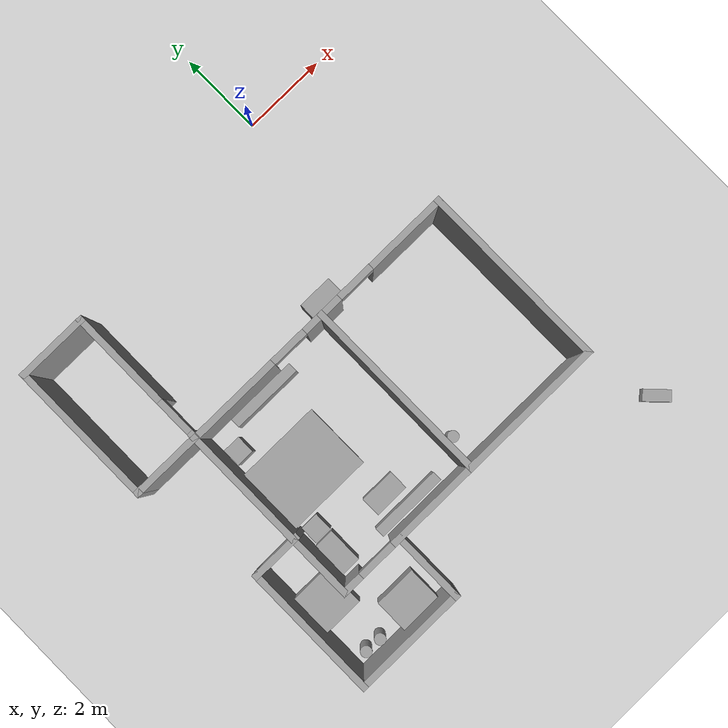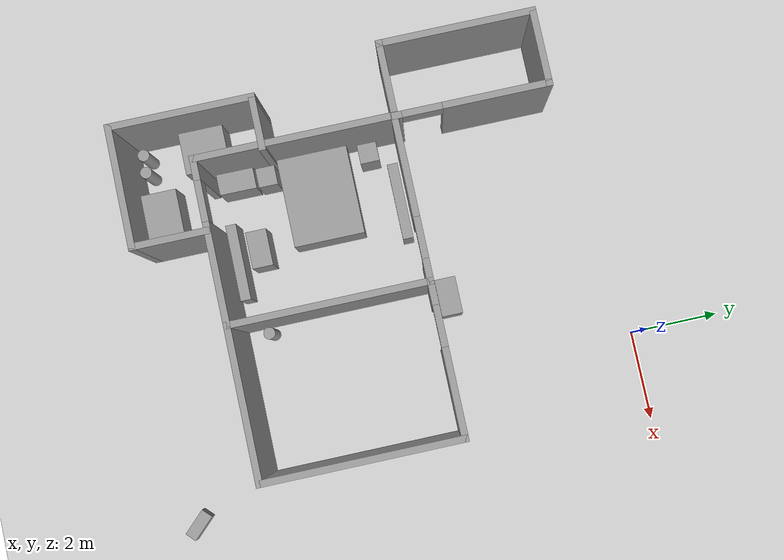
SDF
<sdf version="1.9">
 <world name="default">
  <model name="ground_plane">
   <static>true</static>
   <link name="link">
    <collision name="collision">
     <geometry><plane><normal>0 0 1</normal><size>100 100</size></plane></geometry>
     <surface><friction><ode><mu>100</mu><mu2>50</mu2></ode></friction></surface>
    </collision>
    <visual name="visual">
     <cast_shadows>false</cast_shadows>
     <geometry><plane><normal>0 0 1</normal><size>100 100</size></plane></geometry>
     <material>
      <script><uri>file://media/materials/scripts/gazebo.material</uri><name>Gazebo/Grey</name></script>
     </material>
    </visual>
   </link>
  </model>
  <model name="cma_varanda1">
   <pose>-6.3251799999999996 -2.5931299999999999 0 0 0 0</pose>
   <link name="Wall_0">
    <pose>0.80000000000000004 0 0 0 0 -1.5708</pose>
    <visual name="Wall_0_Visual_0">
     <pose>-0.55249999999999999 0 1.25 0 0 0</pose>
     <geometry><box><size>2.395 0.14999999999999999 2.5</size></box></geometry>
     <material>
      <script><uri>file://media/materials/scripts/gazebo.material</uri><name>Gazebo/Grey</name></script>
      <ambient>1 1 1 1</ambient>
     </material>
    </visual>
    <collision name="Wall_0_Collision_0">
     <geometry><box><size>2.395 0.14999999999999999 2.5</size></box></geometry>
     <pose>-0.55249999999999999 0 1.25 0 0 0</pose>
    </collision>
    <visual name="Wall_0_Visual_1">
     <pose>1.6375 0 1.25 0 0 0</pose>
     <geometry><box><size>0.22500000000000001 0.14999999999999999 2.5</size></box></geometry>
     <material>
      <script><uri>file://media/materials/scripts/gazebo.material</uri><name>Gazebo/Grey</name></script>
      <ambient>1 1 1 1</ambient>
     </material>
    </visual>
    <collision name="Wall_0_Collision_1">
     <geometry><box><size>0.22500000000000001 0.14999999999999999 2.5</size></box></geometry>
     <pose>1.6375 0 1.25 0 0 0</pose>
    </collision>
    <visual name="Wall_0_Visual_2">
     <pose>1.085 0 2.25 0 0 0</pose>
     <geometry><box><size>0.88 0.14999999999999999 0.5</size></box></geometry>
     <material>
      <script><uri>file://media/materials/scripts/gazebo.material</uri><name>Gazebo/Grey</name></script>
      <ambient>1 1 1 1</ambient>
     </material>
    </visual>
    <collision name="Wall_0_Collision_2">
     <geometry><box><size>0.88 0.14999999999999999 0.5</size></box></geometry>
     <pose>1.085 0 2.25 0 0 0</pose>
    </collision>
   </link>
   <link name="Wall_1">
    <collision name="Wall_1_Collision">
     <geometry><box><size>1.75 0.14999999999999999 2.5</size></box></geometry>
     <pose>0 0 1.25 0 0 0</pose>
    </collision>
    <visual name="Wall_1_Visual">
     <pose>0 0 1.25 0 0 0</pose>
     <geometry><box><size>1.75 0.14999999999999999 2.5</size></box></geometry>
     <material>
      <script><uri>file://media/materials/scripts/gazebo.material</uri><name>Gazebo/Grey</name></script>
      <ambient>1 1 1 1</ambient>
     </material>
    </visual>
    <pose>0 -1.675 0 0 0 3.1415899999999999</pose>
   </link>
   <link name="Wall_2">
    <collision name="Wall_2_Collision">
     <geometry><box><size>3.5 0.14999999999999999 2.5</size></box></geometry>
     <pose>0 0 1.25 0 0 0</pose>
    </collision>
    <visual name="Wall_2_Visual">
     <pose>0 0 1.25 0 0 0</pose>
     <geometry><box><size>3.5 0.14999999999999999 2.5</size></box></geometry>
     <material>
      <script><uri>file://media/materials/scripts/gazebo.material</uri><name>Gazebo/Grey</name></script>
      <ambient>1 1 1 1</ambient>
     </material>
    </visual>
    <pose>-0.80000000000000004 0 0 0 0 1.5708</pose>
   </link>
   <link name="Wall_3">
    <collision name="Wall_3_Collision">
     <geometry><box><size>1.75 0.14999999999999999 2.5</size></box></geometry>
     <pose>0 0 1.25 0 0 0</pose>
    </collision>
    <visual name="Wall_3_Visual">
     <pose>0 0 1.25 0 0 0</pose>
     <geometry><box><size>1.75 0.14999999999999999 2.5</size></box></geometry>
     <material>
      <script><uri>file://media/materials/scripts/gazebo.material</uri><name>Gazebo/Grey</name></script>
      <ambient>1 1 1 1</ambient>
     </material>
    </visual>
    <pose>0 1.675 0 0 0 0</pose>
   </link>
   <static>true</static>
  </model>
  <model name="cma_quartos">
   <pose>-2.58169 -7.2645600000000004 0 0 0 0</pose>
   <link name="Wall_0">
    <collision name="Wall_0_Collision">
     <geometry><box><size>4.5 0.14999999999999999 2.5</size></box></geometry>
     <pose>0 0 1.25 0 0 0</pose>
    </collision>
    <visual name="Wall_0_Visual">
     <pose>0 0 1.25 0 0 0</pose>
     <geometry><box><size>4.5 0.14999999999999999 2.5</size></box></geometry>
     <material>
      <script><uri>file://media/materials/scripts/gazebo.material</uri><name>Gazebo/Grey</name></script>
      <ambient>1 1 1 1</ambient>
     </material>
    </visual>
    <pose>0.64500000000000002 0.81000000000000005 0 0 0 -1.5708</pose>
   </link>
   <link name="Wall_1">
    <pose>-1.155 -1.365 0 0 0 3.1415899999999999</pose>
    <visual name="Wall_1_Visual_0">
     <pose>-0.72250000000000003 0 1.25 0 0 0</pose>
     <geometry><box><size>2.3050000000000002 0.14999999999999999 2.5</size></box></geometry>
     <material>
      <script><uri>file://media/materials/scripts/gazebo.material</uri><name>Gazebo/Grey</name></script>
      <ambient>1 1 1 1</ambient>
     </material>
    </visual>
    <collision name="Wall_1_Collision_0">
     <geometry><box><size>2.3050000000000002 0.14999999999999999 2.5</size></box></geometry>
     <pose>-0.72250000000000003 0 1.25 0 0 0</pose>
    </collision>
    <visual name="Wall_1_Visual_1">
     <pose>1.6025 0 1.25 0 0 0</pose>
     <geometry><box><size>0.54500000000000004 0.14999999999999999 2.5</size></box></geometry>
     <material>
      <script><uri>file://media/materials/scripts/gazebo.material</uri><name>Gazebo/Grey</name></script>
      <ambient>1 1 1 1</ambient>
     </material>
    </visual>
    <collision name="Wall_1_Collision_1">
     <geometry><box><size>0.54500000000000004 0.14999999999999999 2.5</size></box></geometry>
     <pose>1.6025 0 1.25 0 0 0</pose>
    </collision>
    <visual name="Wall_1_Visual_2">
     <pose>0.88 0 2.25 0 0 0</pose>
     <geometry><box><size>0.90000000000000002 0.14999999999999999 0.5</size></box></geometry>
     <material>
      <script><uri>file://media/materials/scripts/gazebo.material</uri><name>Gazebo/Grey</name></script>
      <ambient>1 1 1 1</ambient>
     </material>
    </visual>
    <collision name="Wall_1_Collision_2">
     <geometry><box><size>0.90000000000000002 0.14999999999999999 0.5</size></box></geometry>
     <pose>0.88 0 2.25 0 0 0</pose>
    </collision>
   </link>
   <link name="Wall_10">
    <collision name="Wall_10_Collision">
     <geometry><box><size>1.75 0.14999999999999999 2.5</size></box></geometry>
     <pose>0 0 1.25 0 0 0</pose>
    </collision>
    <visual name="Wall_10_Visual">
     <pose>0 0 1.25 0 0 0</pose>
     <geometry><box><size>1.75 0.14999999999999999 2.5</size></box></geometry>
     <material>
      <script><uri>file://media/materials/scripts/gazebo.material</uri><name>Gazebo/Grey</name></script>
      <ambient>1 1 1 1</ambient>
     </material>
    </visual>
    <pose>-1.395 -2.1850000000000001 0 0 0 -1.5708</pose>
   </link>
   <link name="Wall_11">
    <collision name="Wall_11_Collision">
     <geometry><box><size>2.75 0.14999999999999999 2.5</size></box></geometry>
     <pose>0 0 1.25 0 0 0</pose>
    </collision>
    <visual name="Wall_11_Visual">
     <pose>0 0 1.25 0 0 0</pose>
     <geometry><box><size>2.75 0.14999999999999999 2.5</size></box></geometry>
     <material>
      <script><uri>file://media/materials/scripts/gazebo.material</uri><name>Gazebo/Grey</name></script>
      <ambient>1 1 1 1</ambient>
     </material>
    </visual>
    <pose>-2.6949999999999998 -2.9849999999999999 0 0 0 3.1415899999999999</pose>
   </link>
   <link name="Wall_12">
    <collision name="Wall_12_Collision">
     <geometry><box><size>3.25 0.14999999999999999 2.5</size></box></geometry>
     <pose>0 0 1.25 0 0 0</pose>
    </collision>
    <visual name="Wall_12_Visual">
     <pose>0 0 1.25 0 0 0</pose>
     <geometry><box><size>3.25 0.14999999999999999 2.5</size></box></geometry>
     <material>
      <script><uri>file://media/materials/scripts/gazebo.material</uri><name>Gazebo/Grey</name></script>
      <ambient>1 1 1 1</ambient>
     </material>
    </visual>
    <pose>-3.9950000000000001 -1.4350000000000001 0 0 0 1.5708</pose>
   </link>
   <link name="Wall_13">
    <collision name="Wall_13_Collision">
     <geometry><box><size>1.25 0.14999999999999999 2.5</size></box></geometry>
     <pose>0 0 1.25 0 0 0</pose>
    </collision>
    <visual name="Wall_13_Visual">
     <pose>0 0 1.25 0 0 0</pose>
     <geometry><box><size>1.25 0.14999999999999999 2.5</size></box></geometry>
     <material>
      <script><uri>file://media/materials/scripts/gazebo.material</uri><name>Gazebo/Grey</name></script>
      <ambient>1 1 1 1</ambient>
     </material>
    </visual>
    <pose>-3.4449999999999998 0.115 0 0 0 0</pose>
   </link>
   <link name="Wall_2">
    <collision name="Wall_2_Collision">
     <geometry><box><size>4.5 0.14999999999999999 2.5</size></box></geometry>
     <pose>0 0 1.25 0 0 0</pose>
    </collision>
    <visual name="Wall_2_Visual">
     <pose>0 0 1.25 0 0 0</pose>
     <geometry><box><size>4.5 0.14999999999999999 2.5</size></box></geometry>
     <material>
      <script><uri>file://media/materials/scripts/gazebo.material</uri><name>Gazebo/Grey</name></script>
      <ambient>1 1 1 1</ambient>
     </material>
    </visual>
    <pose>-2.9550000000000001 0.81000000000000005 0 0 0 1.5708</pose>
   </link>
   <link name="Wall_3">
    <pose>-1.155 2.9849999999999999 0 0 0 0</pose>
    <visual name="Wall_3_Visual_0">
     <pose>-0.73250000000000004 0 1.25 0 0 0</pose>
     <geometry><box><size>2.2850000000000001 0.14999999999999999 2.5</size></box></geometry>
     <material>
      <script><uri>file://media/materials/scripts/gazebo.material</uri><name>Gazebo/Grey</name></script>
      <ambient>1 1 1 1</ambient>
     </material>
    </visual>
    <collision name="Wall_3_Collision_0">
     <geometry><box><size>2.2850000000000001 0.14999999999999999 2.5</size></box></geometry>
     <pose>-0.73250000000000004 0 1.25 0 0 0</pose>
    </collision>
    <visual name="Wall_3_Visual_1">
     <pose>1.5925 0 1.25 0 0 0</pose>
     <geometry><box><size>0.56499999999999995 0.14999999999999999 2.5</size></box></geometry>
     <material>
      <script><uri>file://media/materials/scripts/gazebo.material</uri><name>Gazebo/Grey</name></script>
      <ambient>1 1 1 1</ambient>
     </material>
    </visual>
    <collision name="Wall_3_Collision_1">
     <geometry><box><size>0.56499999999999995 0.14999999999999999 2.5</size></box></geometry>
     <pose>1.5925 0 1.25 0 0 0</pose>
    </collision>
    <visual name="Wall_3_Visual_2">
     <pose>0.85999999999999999 0 2.25 0 0 0</pose>
     <geometry><box><size>0.90000000000000002 0.14999999999999999 0.5</size></box></geometry>
     <material>
      <script><uri>file://media/materials/scripts/gazebo.material</uri><name>Gazebo/Grey</name></script>
      <ambient>1 1 1 1</ambient>
     </material>
    </visual>
    <collision name="Wall_3_Collision_2">
     <geometry><box><size>0.90000000000000002 0.14999999999999999 0.5</size></box></geometry>
     <pose>0.85999999999999999 0 2.25 0 0 0</pose>
    </collision>
   </link>
   <link name="Wall_6">
    <pose>2.3199999999999998 2.9849999999999999 0 0 0 0</pose>
    <visual name="Wall_6_Visual_0">
     <pose>-1.4575 0 1.25 0 0 0</pose>
     <geometry><box><size>0.58499999999999996 0.14999999999999999 2.5</size></box></geometry>
     <material>
      <script><uri>file://media/materials/scripts/gazebo.material</uri><name>Gazebo/Grey</name></script>
      <ambient>1 1 1 1</ambient>
     </material>
    </visual>
    <collision name="Wall_6_Collision_0">
     <geometry><box><size>0.58499999999999996 0.14999999999999999 2.5</size></box></geometry>
     <pose>-1.4575 0 1.25 0 0 0</pose>
    </collision>
    <visual name="Wall_6_Visual_1">
     <pose>0.74250000000000005 0 1.25 0 0 0</pose>
     <geometry><box><size>2.0150000000000001 0.14999999999999999 2.5</size></box></geometry>
     <material>
      <script><uri>file://media/materials/scripts/gazebo.material</uri><name>Gazebo/Grey</name></script>
      <ambient>1 1 1 1</ambient>
     </material>
    </visual>
    <collision name="Wall_6_Collision_1">
     <geometry><box><size>2.0150000000000001 0.14999999999999999 2.5</size></box></geometry>
     <pose>0.74250000000000005 0 1.25 0 0 0</pose>
    </collision>
    <visual name="Wall_6_Visual_2">
     <pose>-0.71499999999999997 0 2.25 0 0 0</pose>
     <geometry><box><size>0.90000000000000002 0.14999999999999999 0.5</size></box></geometry>
     <material>
      <script><uri>file://media/materials/scripts/gazebo.material</uri><name>Gazebo/Grey</name></script>
      <ambient>1 1 1 1</ambient>
     </material>
    </visual>
    <collision name="Wall_6_Collision_2">
     <geometry><box><size>0.90000000000000002 0.14999999999999999 0.5</size></box></geometry>
     <pose>-0.71499999999999997 0 2.25 0 0 0</pose>
    </collision>
   </link>
   <link name="Wall_7">
    <collision name="Wall_7_Collision">
     <geometry><box><size>4.5 0.14999999999999999 2.5</size></box></geometry>
     <pose>0 0 1.25 0 0 0</pose>
    </collision>
    <visual name="Wall_7_Visual">
     <pose>0 0 1.25 0 0 0</pose>
     <geometry><box><size>4.5 0.14999999999999999 2.5</size></box></geometry>
     <material>
      <script><uri>file://media/materials/scripts/gazebo.material</uri><name>Gazebo/Grey</name></script>
      <ambient>1 1 1 1</ambient>
     </material>
    </visual>
    <pose>3.9950000000000001 0.81000000000000005 0 0 0 -1.5708</pose>
   </link>
   <link name="Wall_8">
    <collision name="Wall_8_Collision">
     <geometry><box><size>3.5 0.14999999999999999 2.5</size></box></geometry>
     <pose>0 0 1.25 0 0 0</pose>
    </collision>
    <visual name="Wall_8_Visual">
     <pose>0 0 1.25 0 0 0</pose>
     <geometry><box><size>3.5 0.14999999999999999 2.5</size></box></geometry>
     <material>
      <script><uri>file://media/materials/scripts/gazebo.material</uri><name>Gazebo/Grey</name></script>
      <ambient>1 1 1 1</ambient>
     </material>
    </visual>
    <pose>2.3199999999999998 -1.365 0 0 0 3.1415899999999999</pose>
   </link>
   <static>true</static>
  </model>
  <model name="cma_armario_s">
   <link name="link_1">
    <pose>-1.9999999999999999e-06 -3.0000000000000001e-06 0 0 0 0</pose>
    <inertial>
     <mass>0.39015899999999998</mass>
     <inertia>
      <ixx>0.039647000000000002</ixx>
      <ixy>0</ixy>
      <ixz>0</ixz>
      <iyy>0.055070800000000003</iyy>
      <iyz>0</iyz>
      <izz>0.029691200000000001</izz>
     </inertia>
    </inertial>
    <visual name="visual">
     <geometry><box><size>0.83294199999999996 0.46839700000000001 1</size></box></geometry>
     <material>
      <lighting>true</lighting>
      <script><uri>file://media/materials/scripts/gazebo.material</uri><name>Gazebo/Grey</name></script>
      <ambient>0.300000012 0.300000012 0.300000012 1</ambient>
      <diffuse>0.699999988 0.699999988 0.699999988 1</diffuse>
      <specular>0.00999999978 0.00999999978 0.00999999978 1</specular>
      <emissive>0 0 0 1</emissive>
     </material>
    </visual>
    <collision name="collision">
     <geometry><box><size>0.83294199999999996 0.46839700000000001 1</size></box></geometry>
     <surface>
      <friction>
       <ode><mu>1</mu><mu2>1</mu2><fdir1>0 0 0</fdir1><slip1>0</slip1><slip2>0</slip2></ode>
       <torsional>
        <coefficient>1</coefficient>
        <patch_radius>0</patch_radius>
        <surface_radius>0</surface_radius>
        <use_patch_radius>true</use_patch_radius>
        <ode><slip>0</slip></ode>
       </torsional>
      </friction>
      <bounce><restitution_coefficient>0</restitution_coefficient><threshold>1000000</threshold></bounce>
      <contact>
       <collide_without_contact>false</collide_without_contact>
       <collide_without_contact_bitmask>1</collide_without_contact_bitmask>
       <collide_bitmask>1</collide_bitmask>
       <ode>
        <soft_cfm>0</soft_cfm>
        <soft_erp>0.20000000000000001</soft_erp>
        <kp>10000000000000</kp>
        <kd>1</kd>
        <max_vel>0.01</max_vel>
        <min_depth>0</min_depth>
       </ode>
       <bullet>
        <split_impulse>true</split_impulse>
        <split_impulse_penetration_threshold>-0.01</split_impulse_penetration_threshold>
        <soft_cfm>0</soft_cfm>
        <soft_erp>0.20000000000000001</soft_erp>
        <kp>10000000000000</kp>
        <kd>1</kd>
       </bullet>
      </contact>
     </surface>
    </collision>
   </link>
   <static>false</static>
   <pose>-1.63842 -3.93804 0.5 0 0 0.00027599999999999999</pose>
  </model>
  <model name="cma_cama_c">
   <link name="link_0">
    <pose>5.0000000000000004e-06 -3.9999999999999998e-06 0 0 0 0</pose>
    <inertial>
     <mass>3.1835800000000001</mass>
     <inertia>
      <ixx>0.93486199999999997</ixx>
      <ixy>0</ixy>
      <ixz>0</ixz>
      <iyy>1.3306899999999999</iyy>
      <iyz>0</iyz>
      <izz>1.7349600000000001</izz>
     </inertia>
    </inertial>
    <visual name="visual">
     <geometry><box><size>2.0039400000000001 1.58866 1</size></box></geometry>
     <material>
      <lighting>true</lighting>
      <script><uri>file://media/materials/scripts/gazebo.material</uri><name>Gazebo/Grey</name></script>
      <ambient>0.300000012 0.300000012 0.300000012 1</ambient>
      <diffuse>0.699999988 0.699999988 0.699999988 1</diffuse>
      <specular>0.00999999978 0.00999999978 0.00999999978 1</specular>
      <emissive>0 0 0 1</emissive>
     </material>
    </visual>
    <collision name="collision">
     <geometry><box><size>2.0039400000000001 1.58866 1</size></box></geometry>
     <surface>
      <friction>
       <ode><mu>1</mu><mu2>1</mu2><fdir1>0 0 0</fdir1><slip1>0</slip1><slip2>0</slip2></ode>
       <torsional>
        <coefficient>1</coefficient>
        <patch_radius>0</patch_radius>
        <surface_radius>0</surface_radius>
        <use_patch_radius>true</use_patch_radius>
        <ode><slip>0</slip></ode>
       </torsional>
      </friction>
      <bounce><restitution_coefficient>0</restitution_coefficient><threshold>1000000</threshold></bounce>
      <contact>
       <collide_without_contact>false</collide_without_contact>
       <collide_without_contact_bitmask>1</collide_without_contact_bitmask>
       <collide_bitmask>1</collide_bitmask>
       <ode>
        <soft_cfm>0</soft_cfm>
        <soft_erp>0.20000000000000001</soft_erp>
        <kp>10000000000000</kp>
        <kd>1</kd>
        <max_vel>0.01</max_vel>
        <min_depth>0</min_depth>
       </ode>
       <bullet>
        <split_impulse>true</split_impulse>
        <split_impulse_penetration_threshold>-0.01</split_impulse_penetration_threshold>
        <soft_cfm>0</soft_cfm>
        <soft_erp>0.20000000000000001</soft_erp>
        <kp>10000000000000</kp>
        <kd>1</kd>
       </bullet>
      </contact>
     </surface>
    </collision>
   </link>
   <static>false</static>
   <pose>-4.43933 -6.2481600000000004 0.5 0 0 0</pose>
  </model>
  <model name="cma_armario_0">
   <link name="link_0">
    <pose>1.3215699999999999 0.88517800000000002 0.5 0 0 0</pose>
    <inertial>
     <mass>0.40237600000000001</mass>
     <inertia>
      <ixx>0.0353686</ixx>
      <ixy>0</ixy>
      <ixz>0</ixz>
      <iyy>0.13261600000000001</iyy>
      <iyz>0</iyz>
      <izz>0.100922</izz>
     </inertia>
    </inertial>
    <visual name="visual">
     <geometry><box><size>1.7187699999999999 0.234069 1</size></box></geometry>
     <material>
      <lighting>true</lighting>
      <script><uri>file://media/materials/scripts/gazebo.material</uri><name>Gazebo/Grey</name></script>
      <ambient>0.300000012 0.300000012 0.300000012 1</ambient>
      <diffuse>0.699999988 0.699999988 0.699999988 1</diffuse>
      <specular>0.00999999978 0.00999999978 0.00999999978 1</specular>
      <emissive>0 0 0 1</emissive>
     </material>
    </visual>
    <collision name="collision">
     <geometry><box><size>1.7187699999999999 0.234069 1</size></box></geometry>
     <surface>
      <friction>
       <ode><mu>1</mu><mu2>1</mu2><fdir1>0 0 0</fdir1><slip1>0</slip1><slip2>0</slip2></ode>
       <torsional>
        <coefficient>1</coefficient>
        <patch_radius>0</patch_radius>
        <surface_radius>0</surface_radius>
        <use_patch_radius>true</use_patch_radius>
        <ode><slip>0</slip></ode>
       </torsional>
      </friction>
      <bounce><restitution_coefficient>0</restitution_coefficient><threshold>1000000</threshold></bounce>
      <contact>
       <collide_without_contact>false</collide_without_contact>
       <collide_without_contact_bitmask>1</collide_without_contact_bitmask>
       <collide_bitmask>1</collide_bitmask>
       <ode>
        <soft_cfm>0</soft_cfm>
        <soft_erp>0.20000000000000001</soft_erp>
        <kp>10000000000000</kp>
        <kd>1</kd>
        <max_vel>0.01</max_vel>
        <min_depth>0</min_depth>
       </ode>
       <bullet>
        <split_impulse>true</split_impulse>
        <split_impulse_penetration_threshold>-0.01</split_impulse_penetration_threshold>
        <soft_cfm>0</soft_cfm>
        <soft_erp>0.20000000000000001</soft_erp>
        <kp>10000000000000</kp>
        <kd>1</kd>
       </bullet>
      </contact>
     </surface>
    </collision>
   </link>
   <static>false</static>
   <pose>-5.2770799999999998 -5.4184299999999999 0 0 0 -0.00067100000000000016</pose>
  </model>
  <model name="cma_gaveteiro_pequeno_1">
   <link name="link_0">
    <pose>0.25617400000000001 1.2505500000000001 0.5 0 0 0</pose>
    <inertial>
     <mass>0.18718599999999999</mass>
     <inertia>
      <ixx>0.018509999999999999</ixx>
      <ixy>0</ixy>
      <ixz>0</ixz>
      <iyy>0.018527600000000002</iyy>
      <iyz>0</iyz>
      <izz>0.00583981</izz>
     </inertia>
    </inertial>
    <visual name="visual">
     <geometry><box><size>0.43331700000000001 0.432002 1</size></box></geometry>
     <material>
      <lighting>true</lighting>
      <script><uri>file://media/materials/scripts/gazebo.material</uri><name>Gazebo/Grey</name></script>
      <ambient>0.300000012 0.300000012 0.300000012 1</ambient>
      <diffuse>0.699999988 0.699999988 0.699999988 1</diffuse>
      <specular>0.00999999978 0.00999999978 0.00999999978 1</specular>
      <emissive>0 0 0 1</emissive>
     </material>
    </visual>
    <collision name="collision">
     <geometry><box><size>0.43331700000000001 0.432002 1</size></box></geometry>
     <surface>
      <friction>
       <ode><mu>1</mu><mu2>1</mu2><fdir1>0 0 0</fdir1><slip1>0</slip1><slip2>0</slip2></ode>
       <torsional>
        <coefficient>1</coefficient>
        <patch_radius>0</patch_radius>
        <surface_radius>0</surface_radius>
        <use_patch_radius>true</use_patch_radius>
        <ode><slip>0</slip></ode>
       </torsional>
      </friction>
      <bounce><restitution_coefficient>0</restitution_coefficient><threshold>1000000</threshold></bounce>
      <contact>
       <collide_without_contact>false</collide_without_contact>
       <collide_without_contact_bitmask>1</collide_without_contact_bitmask>
       <collide_bitmask>1</collide_bitmask>
       <ode>
        <soft_cfm>0</soft_cfm>
        <soft_erp>0.20000000000000001</soft_erp>
        <kp>10000000000000</kp>
        <kd>1</kd>
        <max_vel>0.01</max_vel>
        <min_depth>0</min_depth>
       </ode>
       <bullet>
        <split_impulse>true</split_impulse>
        <split_impulse_penetration_threshold>-0.01</split_impulse_penetration_threshold>
        <soft_cfm>0</soft_cfm>
        <soft_erp>0.20000000000000001</soft_erp>
        <kp>10000000000000</kp>
        <kd>1</kd>
       </bullet>
      </contact>
     </surface>
    </collision>
   </link>
   <static>false</static>
   <pose>-5.4309399999999997 -6.2550699999999999 0 0 0 -5.0000000000000004e-06</pose>
  </model>
  <model name="cma_armario_s_0">
   <link name="link_1">
    <pose>-1.9999999999999999e-06 -3.0000000000000001e-06 0 0 0 0</pose>
    <inertial>
     <mass>0.39015899999999998</mass>
     <inertia>
      <ixx>0.039647000000000002</ixx>
      <ixy>0</ixy>
      <ixz>0</ixz>
      <iyy>0.055070800000000003</iyy>
      <iyz>0</iyz>
      <izz>0.029691200000000001</izz>
     </inertia>
    </inertial>
    <visual name="visual">
     <geometry><box><size>0.83294199999999996 0.46839700000000001 1</size></box></geometry>
     <material>
      <lighting>true</lighting>
      <script><uri>file://media/materials/scripts/gazebo.material</uri><name>Gazebo/Grey</name></script>
      <ambient>0.300000012 0.300000012 0.300000012 1</ambient>
      <diffuse>0.699999988 0.699999988 0.699999988 1</diffuse>
      <specular>0.00999999978 0.00999999978 0.00999999978 1</specular>
      <emissive>0 0 0 1</emissive>
     </material>
    </visual>
    <collision name="collision">
     <geometry><box><size>0.83294199999999996 0.46839700000000001 1</size></box></geometry>
     <surface>
      <friction>
       <ode><mu>1</mu><mu2>1</mu2><fdir1>0 0 0</fdir1><slip1>0</slip1><slip2>0</slip2></ode>
       <torsional>
        <coefficient>1</coefficient>
        <patch_radius>0</patch_radius>
        <surface_radius>0</surface_radius>
        <use_patch_radius>true</use_patch_radius>
        <ode><slip>0</slip></ode>
       </torsional>
      </friction>
      <bounce><restitution_coefficient>0</restitution_coefficient><threshold>1000000</threshold></bounce>
      <contact>
       <collide_without_contact>false</collide_without_contact>
       <collide_without_contact_bitmask>1</collide_without_contact_bitmask>
       <collide_bitmask>1</collide_bitmask>
       <ode>
        <soft_cfm>0</soft_cfm>
        <soft_erp>0.20000000000000001</soft_erp>
        <kp>10000000000000</kp>
        <kd>1</kd>
        <max_vel>0.01</max_vel>
        <min_depth>0</min_depth>
       </ode>
       <bullet>
        <split_impulse>true</split_impulse>
        <split_impulse_penetration_threshold>-0.01</split_impulse_penetration_threshold>
        <soft_cfm>0</soft_cfm>
        <soft_erp>0.20000000000000001</soft_erp>
        <kp>10000000000000</kp>
        <kd>1</kd>
       </bullet>
      </contact>
     </surface>
    </collision>
   </link>
   <static>false</static>
   <pose>-5.1684299999999999 -8.0155399999999997 0.5 -3.9999999999999998e-06 3.0000000000000001e-06 -1.57497</pose>
  </model>
  <model name="cma_gaveteiro_pequeno_2">
   <link name="link_0">
    <pose>0.25617400000000001 1.2505500000000001 0.5 0 0 0</pose>
    <inertial>
     <mass>0.18718599999999999</mass>
     <inertia>
      <ixx>0.018509999999999999</ixx>
      <ixy>0</ixy>
      <ixz>0</ixz>
      <iyy>0.018527600000000002</iyy>
      <iyz>0</iyz>
      <izz>0.00583981</izz>
     </inertia>
    </inertial>
    <visual name="visual">
     <geometry><box><size>0.43331700000000001 0.432002 1</size></box></geometry>
     <material>
      <lighting>true</lighting>
      <script><uri>file://media/materials/scripts/gazebo.material</uri><name>Gazebo/Grey</name></script>
      <ambient>0.300000012 0.300000012 0.300000012 1</ambient>
      <diffuse>0.699999988 0.699999988 0.699999988 1</diffuse>
      <specular>0.00999999978 0.00999999978 0.00999999978 1</specular>
      <emissive>0 0 0 1</emissive>
     </material>
    </visual>
    <collision name="collision">
     <geometry><box><size>0.43331700000000001 0.432002 1</size></box></geometry>
     <surface>
      <friction>
       <ode><mu>1</mu><mu2>1</mu2><fdir1>0 0 0</fdir1><slip1>0</slip1><slip2>0</slip2></ode>
       <torsional>
        <coefficient>1</coefficient>
        <patch_radius>0</patch_radius>
        <surface_radius>0</surface_radius>
        <use_patch_radius>true</use_patch_radius>
        <ode><slip>0</slip></ode>
       </torsional>
      </friction>
      <bounce><restitution_coefficient>0</restitution_coefficient><threshold>1000000</threshold></bounce>
      <contact>
       <collide_without_contact>false</collide_without_contact>
       <collide_without_contact_bitmask>1</collide_without_contact_bitmask>
       <collide_bitmask>1</collide_bitmask>
       <ode>
        <soft_cfm>0</soft_cfm>
        <soft_erp>0.20000000000000001</soft_erp>
        <kp>10000000000000</kp>
        <kd>1</kd>
        <max_vel>0.01</max_vel>
        <min_depth>0</min_depth>
       </ode>
       <bullet>
        <split_impulse>true</split_impulse>
        <split_impulse_penetration_threshold>-0.01</split_impulse_penetration_threshold>
        <soft_cfm>0</soft_cfm>
        <soft_erp>0.20000000000000001</soft_erp>
        <kp>10000000000000</kp>
        <kd>1</kd>
       </bullet>
      </contact>
     </surface>
    </collision>
   </link>
   <static>false</static>
   <pose>-5.3916300000000001 -8.5855200000000007 1.9999999999999999e-06 -2.9999999999999997e-06 -3.0000000000000009e-06 -3.8000000000000009e-05</pose>
  </model>
  <model name="cma_armario_s_1">
   <link name="link_1">
    <pose>-1.9999999999999999e-06 -3.0000000000000001e-06 0 0 0 0</pose>
    <inertial>
     <mass>0.39015899999999998</mass>
     <inertia>
      <ixx>0.039647000000000002</ixx>
      <ixy>0</ixy>
      <ixz>0</ixz>
      <iyy>0.055070800000000003</iyy>
      <iyz>0</iyz>
      <izz>0.029691200000000001</izz>
     </inertia>
    </inertial>
    <visual name="visual">
     <geometry><box><size>0.83294199999999996 0.46839700000000001 1</size></box></geometry>
     <material>
      <lighting>true</lighting>
      <script><uri>file://media/materials/scripts/gazebo.material</uri><name>Gazebo/Grey</name></script>
      <ambient>0.300000012 0.300000012 0.300000012 1</ambient>
      <diffuse>0.699999988 0.699999988 0.699999988 1</diffuse>
      <specular>0.00999999978 0.00999999978 0.00999999978 1</specular>
      <emissive>0 0 0 1</emissive>
     </material>
    </visual>
    <collision name="collision">
     <geometry><box><size>0.83294199999999996 0.46839700000000001 1</size></box></geometry>
     <surface>
      <friction>
       <ode><mu>1</mu><mu2>1</mu2><fdir1>0 0 0</fdir1><slip1>0</slip1><slip2>0</slip2></ode>
       <torsional>
        <coefficient>1</coefficient>
        <patch_radius>0</patch_radius>
        <surface_radius>0</surface_radius>
        <use_patch_radius>true</use_patch_radius>
        <ode><slip>0</slip></ode>
       </torsional>
      </friction>
      <bounce><restitution_coefficient>0</restitution_coefficient><threshold>1000000</threshold></bounce>
      <contact>
       <collide_without_contact>false</collide_without_contact>
       <collide_without_contact_bitmask>1</collide_without_contact_bitmask>
       <collide_bitmask>1</collide_bitmask>
       <ode>
        <soft_cfm>0</soft_cfm>
        <soft_erp>0.20000000000000001</soft_erp>
        <kp>10000000000000</kp>
        <kd>1</kd>
        <max_vel>0.01</max_vel>
        <min_depth>0</min_depth>
       </ode>
       <bullet>
        <split_impulse>true</split_impulse>
        <split_impulse_penetration_threshold>-0.01</split_impulse_penetration_threshold>
        <soft_cfm>0</soft_cfm>
        <soft_erp>0.20000000000000001</soft_erp>
        <kp>10000000000000</kp>
        <kd>1</kd>
       </bullet>
      </contact>
     </surface>
    </collision>
   </link>
   <static>false</static>
   <pose>-3.5794999999999999 -7.8237699999999997 0.5 0 0 0.00027500000000000002</pose>
  </model>
  <model name="cma_armario_1">
   <link name="link_0">
    <pose>1.3215699999999999 0.88517800000000002 0.5 0 0 0</pose>
    <inertial>
     <mass>0.40237600000000001</mass>
     <inertia>
      <ixx>0.0353686</ixx>
      <ixy>0</ixy>
      <ixz>0</ixz>
      <iyy>0.13261600000000001</iyy>
      <iyz>0</iyz>
      <izz>0.100922</izz>
     </inertia>
    </inertial>
    <visual name="visual">
     <geometry><box><size>1.7187699999999999 0.234069 1</size></box></geometry>
     <material>
      <lighting>true</lighting>
      <script><uri>file://media/materials/scripts/gazebo.material</uri><name>Gazebo/Grey</name></script>
      <ambient>0.300000012 0.300000012 0.300000012 1</ambient>
      <diffuse>0.699999988 0.699999988 0.699999988 1</diffuse>
      <specular>0.00999999978 0.00999999978 0.00999999978 1</specular>
      <emissive>0 0 0 1</emissive>
     </material>
    </visual>
    <collision name="collision">
     <geometry><box><size>1.7187699999999999 0.234069 1</size></box></geometry>
     <surface>
      <friction>
       <ode><mu>1</mu><mu2>1</mu2><fdir1>0 0 0</fdir1><slip1>0</slip1><slip2>0</slip2></ode>
       <torsional>
        <coefficient>1</coefficient>
        <patch_radius>0</patch_radius>
        <surface_radius>0</surface_radius>
        <use_patch_radius>true</use_patch_radius>
        <ode><slip>0</slip></ode>
       </torsional>
      </friction>
      <bounce><restitution_coefficient>0</restitution_coefficient><threshold>1000000</threshold></bounce>
      <contact>
       <collide_without_contact>false</collide_without_contact>
       <collide_without_contact_bitmask>1</collide_without_contact_bitmask>
       <collide_bitmask>1</collide_bitmask>
       <ode>
        <soft_cfm>0</soft_cfm>
        <soft_erp>0.20000000000000001</soft_erp>
        <kp>10000000000000</kp>
        <kd>1</kd>
        <max_vel>0.01</max_vel>
        <min_depth>0</min_depth>
       </ode>
       <bullet>
        <split_impulse>true</split_impulse>
        <split_impulse_penetration_threshold>-0.01</split_impulse_penetration_threshold>
        <soft_cfm>0</soft_cfm>
        <soft_erp>0.20000000000000001</soft_erp>
        <kp>10000000000000</kp>
        <kd>1</kd>
       </bullet>
      </contact>
     </surface>
    </collision>
   </link>
   <static>false</static>
   <pose>-4.69991 -9.2268500000000007 0 0 0 -0.00067100000000000016</pose>
  </model>
  <model name="cma_lixo_1">
   <link name="link_1">
    <pose>0.88296200000000002 1.81586 0.5 0 0 0</pose>
    <inertial>
     <mass>0.068764400000000003</mass>
     <inertia>
      <ixx>0.00602588</ixx>
      <ixy>0</ixy>
      <ixz>0</ixz>
      <iyy>0.00602588</iyy>
      <iyz>0</iyz>
      <izz>0.00059106800000000004</izz>
     </inertia>
    </inertial>
    <visual name="visual">
     <geometry><cylinder><radius>0.13111200000000001</radius><length>1</length></cylinder></geometry>
     <material>
      <lighting>true</lighting>
      <script><uri>file://media/materials/scripts/gazebo.material</uri><name>Gazebo/Grey</name></script>
      <ambient>0.300000012 0.300000012 0.300000012 1</ambient>
      <diffuse>0.699999988 0.699999988 0.699999988 1</diffuse>
      <specular>0.00999999978 0.00999999978 0.00999999978 1</specular>
      <emissive>0 0 0 1</emissive>
     </material>
    </visual>
    <collision name="collision">
     <geometry><cylinder><radius>0.13111200000000001</radius><length>1</length></cylinder></geometry>
     <surface>
      <friction>
       <ode><mu>1</mu><mu2>1</mu2><fdir1>0 0 0</fdir1><slip1>0</slip1><slip2>0</slip2></ode>
       <torsional>
        <coefficient>1</coefficient>
        <patch_radius>0</patch_radius>
        <surface_radius>0</surface_radius>
        <use_patch_radius>true</use_patch_radius>
        <ode><slip>0</slip></ode>
       </torsional>
      </friction>
      <bounce><restitution_coefficient>0</restitution_coefficient><threshold>1000000</threshold></bounce>
      <contact>
       <collide_without_contact>false</collide_without_contact>
       <collide_without_contact_bitmask>1</collide_without_contact_bitmask>
       <collide_bitmask>1</collide_bitmask>
       <ode>
        <soft_cfm>0</soft_cfm>
        <soft_erp>0.20000000000000001</soft_erp>
        <kp>10000000000000</kp>
        <kd>1</kd>
        <max_vel>0.01</max_vel>
        <min_depth>0</min_depth>
       </ode>
       <bullet>
        <split_impulse>true</split_impulse>
        <split_impulse_penetration_threshold>-0.01</split_impulse_penetration_threshold>
        <soft_cfm>0</soft_cfm>
        <soft_erp>0.20000000000000001</soft_erp>
        <kp>10000000000000</kp>
        <kd>1</kd>
       </bullet>
      </contact>
     </surface>
    </collision>
   </link>
   <static>false</static>
   <pose>-2.5710299999999999 -9.7974999999999994 -9.0000000000000002e-06 0 0 0</pose>
  </model>
  <model name="cma_barra_70cmD">
   <link name="link_2">
    <pose>3.7937500000000002 1.34046 0.5 0 0 -0.80353399999999986</pose>
    <inertial>
     <mass>0.063136800000000007</mass>
     <inertia>
      <ixx>0.0010654200000000001</ixx>
      <ixy>0</ixy>
      <ixz>0</ixz>
      <iyy>0.0028472699999999998</iyy>
      <iyz>0</iyz>
      <izz>0.0025815</izz>
     </inertia>
    </inertial>
    <visual name="visual">
     <geometry><box><size>0.64393800000000001 0.27572799999999997 0.35573700000000003</size></box></geometry>
     <material>
      <lighting>true</lighting>
      <script><uri>file://media/materials/scripts/gazebo.material</uri><name>Gazebo/Grey</name></script>
      <ambient>0.300000012 0.300000012 0.300000012 1</ambient>
      <diffuse>0.699999988 0.699999988 0.699999988 1</diffuse>
      <specular>0.00999999978 0.00999999978 0.00999999978 1</specular>
      <emissive>0 0 0 1</emissive>
     </material>
    </visual>
    <collision name="collision">
     <geometry><box><size>0.64393800000000001 0.27572799999999997 0.35573700000000003</size></box></geometry>
     <surface>
      <friction>
       <ode><mu>1</mu><mu2>1</mu2><fdir1>0 0 0</fdir1><slip1>0</slip1><slip2>0</slip2></ode>
       <torsional>
        <coefficient>1</coefficient>
        <patch_radius>0</patch_radius>
        <surface_radius>0</surface_radius>
        <use_patch_radius>true</use_patch_radius>
        <ode><slip>0</slip></ode>
       </torsional>
      </friction>
      <bounce><restitution_coefficient>0</restitution_coefficient><threshold>1000000</threshold></bounce>
      <contact>
       <collide_without_contact>false</collide_without_contact>
       <collide_without_contact_bitmask>1</collide_without_contact_bitmask>
       <collide_bitmask>1</collide_bitmask>
       <ode>
        <soft_cfm>0</soft_cfm>
        <soft_erp>0.20000000000000001</soft_erp>
        <kp>10000000000000</kp>
        <kd>1</kd>
        <max_vel>0.01</max_vel>
        <min_depth>0</min_depth>
       </ode>
       <bullet>
        <split_impulse>true</split_impulse>
        <split_impulse_penetration_threshold>-0.01</split_impulse_penetration_threshold>
        <soft_cfm>0</soft_cfm>
        <soft_erp>0.20000000000000001</soft_erp>
        <kp>10000000000000</kp>
        <kd>1</kd>
       </bullet>
      </contact>
     </surface>
    </collision>
   </link>
   <static>false</static>
   <pose>-1.6530800000000001 -11.8269 -0.32213199999999997 0 0 0.0032050000000000004</pose>
  </model>
  <model name="unit_box_7">
   <pose>-6.0480900000000002 -8.5792999999999999 0.5 0 0 0</pose>
   <link name="link">
    <inertial>
     <mass>1</mass>
     <inertia>
      <ixx>0.16666700000000001</ixx>
      <ixy>0</ixy>
      <ixz>0</ixz>
      <iyy>0.16666700000000001</iyy>
      <iyz>0</iyz>
      <izz>0.16666700000000001</izz>
     </inertia>
    </inertial>
    <collision name="collision">
     <geometry><box><size>0.999997 0.999996 0.999997</size></box></geometry>
    </collision>
    <visual name="visual">
     <geometry><box><size>0.999997 0.999996 0.999997</size></box></geometry>
     <material>
      <script><name>Gazebo/Grey</name><uri>file://media/materials/scripts/gazebo.material</uri></script>
     </material>
    </visual>
   </link>
  </model>
  <model name="cma_lixo_7">
   <link name="link_1">
    <pose>0.88296200000000002 1.81586 0.5 0 0 0</pose>
    <inertial>
     <mass>0.068764400000000003</mass>
     <inertia>
      <ixx>0.00602588</ixx>
      <ixy>0</ixy>
      <ixz>0</ixz>
      <iyy>0.00602588</iyy>
      <iyz>0</iyz>
      <izz>0.00059106800000000004</izz>
     </inertia>
    </inertial>
    <visual name="visual">
     <geometry><cylinder><radius>0.13111200000000001</radius><length>1</length></cylinder></geometry>
     <material>
      <lighting>true</lighting>
      <script><uri>file://media/materials/scripts/gazebo.material</uri><name>Gazebo/Grey</name></script>
      <ambient>0.300000012 0.300000012 0.300000012 1</ambient>
      <diffuse>0.699999988 0.699999988 0.699999988 1</diffuse>
      <specular>0.00999999978 0.00999999978 0.00999999978 1</specular>
      <emissive>0 0 0 1</emissive>
     </material>
    </visual>
    <collision name="collision">
     <geometry><cylinder><radius>0.13111200000000001</radius><length>1</length></cylinder></geometry>
     <surface>
      <friction>
       <ode><mu>1</mu><mu2>1</mu2><fdir1>0 0 0</fdir1><slip1>0</slip1><slip2>0</slip2></ode>
       <torsional>
        <coefficient>1</coefficient>
        <patch_radius>0</patch_radius>
        <surface_radius>0</surface_radius>
        <use_patch_radius>true</use_patch_radius>
        <ode><slip>0</slip></ode>
       </torsional>
      </friction>
      <bounce><restitution_coefficient>0</restitution_coefficient><threshold>1000000</threshold></bounce>
      <contact>
       <collide_without_contact>false</collide_without_contact>
       <collide_without_contact_bitmask>1</collide_without_contact_bitmask>
       <collide_bitmask>1</collide_bitmask>
       <ode>
        <soft_cfm>0</soft_cfm>
        <soft_erp>0.20000000000000001</soft_erp>
        <kp>10000000000000</kp>
        <kd>1</kd>
        <max_vel>0.01</max_vel>
        <min_depth>0</min_depth>
       </ode>
       <bullet>
        <split_impulse>true</split_impulse>
        <split_impulse_penetration_threshold>-0.01</split_impulse_penetration_threshold>
        <soft_cfm>0</soft_cfm>
        <soft_erp>0.20000000000000001</soft_erp>
        <kp>10000000000000</kp>
        <kd>1</kd>
       </bullet>
      </contact>
     </surface>
    </collision>
   </link>
   <static>false</static>
   <pose>-7.0698999999999996 -11.7463 0 0 0 0</pose>
  </model>
  <model name="unit_box_8">
   <pose>-4.7989499999999996 -9.8778900000000007 0.5 0 0 0</pose>
   <link name="link">
    <inertial>
     <mass>1</mass>
     <inertia>
      <ixx>0.16666700000000001</ixx>
      <ixy>0</ixy>
      <ixz>0</ixz>
      <iyy>0.16666700000000001</iyy>
      <iyz>0</iyz>
      <izz>0.16666700000000001</izz>
     </inertia>
    </inertial>
    <collision name="collision"><geometry><box><size>1 1 1</size></box></geometry></collision>
    <visual name="visual">
     <geometry><box><size>1 1 1</size></box></geometry>
     <material>
      <script><name>Gazebo/Grey</name><uri>file://media/materials/scripts/gazebo.material</uri></script>
     </material>
    </visual>
   </link>
  </model>
  <model name="cma_lixo_8">
   <link name="link_1">
    <pose>0.88296200000000002 1.81586 0.5 0 0 0</pose>
    <inertial>
     <mass>0.068764400000000003</mass>
     <inertia>
      <ixx>0.00602588</ixx>
      <ixy>0</ixy>
      <ixz>0</ixz>
      <iyy>0.00602588</iyy>
      <iyz>0</iyz>
      <izz>0.00059106800000000004</izz>
     </inertia>
    </inertial>
    <visual name="visual">
     <geometry><cylinder><radius>0.13111200000000001</radius><length>1</length></cylinder></geometry>
     <material>
      <lighting>true</lighting>
      <script><uri>file://media/materials/scripts/gazebo.material</uri><name>Gazebo/Grey</name></script>
      <ambient>0.300000012 0.300000012 0.300000012 1</ambient>
      <diffuse>0.699999988 0.699999988 0.699999988 1</diffuse>
      <specular>0.00999999978 0.00999999978 0.00999999978 1</specular>
      <emissive>0 0 0 1</emissive>
     </material>
    </visual>
    <collision name="collision">
     <geometry><cylinder><radius>0.13111200000000001</radius><length>1</length></cylinder></geometry>
     <surface>
      <friction>
       <ode><mu>1</mu><mu2>1</mu2><fdir1>0 0 0</fdir1><slip1>0</slip1><slip2>0</slip2></ode>
       <torsional>
        <coefficient>1</coefficient>
        <patch_radius>0</patch_radius>
        <surface_radius>0</surface_radius>
        <use_patch_radius>true</use_patch_radius>
        <ode><slip>0</slip></ode>
       </torsional>
      </friction>
      <bounce><restitution_coefficient>0</restitution_coefficient><threshold>1000000</threshold></bounce>
      <contact>
       <collide_without_contact>false</collide_without_contact>
       <collide_without_contact_bitmask>1</collide_without_contact_bitmask>
       <collide_bitmask>1</collide_bitmask>
       <ode>
        <soft_cfm>0</soft_cfm>
        <soft_erp>0.20000000000000001</soft_erp>
        <kp>10000000000000</kp>
        <kd>1</kd>
        <max_vel>0.01</max_vel>
        <min_depth>0</min_depth>
       </ode>
       <bullet>
        <split_impulse>true</split_impulse>
        <split_impulse_penetration_threshold>-0.01</split_impulse_penetration_threshold>
        <soft_cfm>0</soft_cfm>
        <soft_erp>0.20000000000000001</soft_erp>
        <kp>10000000000000</kp>
        <kd>1</kd>
       </bullet>
      </contact>
     </surface>
    </collision>
   </link>
   <static>false</static>
   <pose>-6.6764099999999997 -11.7667 0 0 0 0</pose>
  </model>
 </world>
</sdf>
